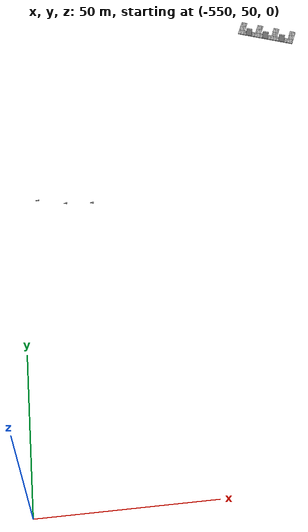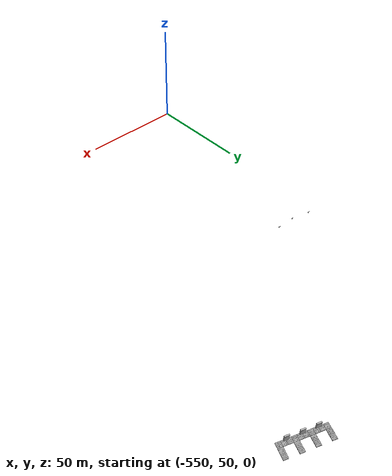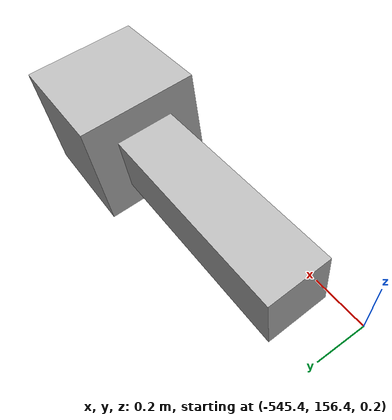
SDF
<sdf version="1.6">
 <world name="robotx_example_course">
  <spherical_coordinates>
   <surface_model>EARTH_WGS84</surface_model>
   <world_frame_orientation>ENU</world_frame_orientation>
   <latitude_deg>-33.724223</latitude_deg>
   <longitude_deg>150.679736</longitude_deg>
   <elevation>0.0</elevation>
   <heading_deg>0.0</heading_deg>
  </spherical_coordinates>
  <include><uri>model://sun</uri></include>
  <include>
   <name>post_0</name>
   <pose>-535.916809 154.362869 0.675884 -0.17182 0.030464 -0.005286</pose>
   <uri>model://post</uri>
  </include>
  <include>
   <name>post_1</name>
   <pose>-527.48999 153.854782 0.425844 -0.1365 0  0</pose>
   <uri>model://post</uri>
  </include>
  <include>
   <name>post_2</name>
   <pose>-544.832825 156.671951 0.499025 -0.162625 0 0</pose>
   <uri>model://post</uri>
  </include>
  <include>
   <name>blue_projectile</name>
   <pose>-545 60 0.03 0 0 0</pose>
   <uri>model://blue_projectile</uri>
  </include>
  <plugin filename="libusv_gazebo_wind_plugin.so" name="wind">
   <wind_obj>
    <name>wamv</name>
    <link_name>wamv/base_link</link_name>
    <coeff_vector>.5 .5 .33</coeff_vector>
   </wind_obj>
   <wind_direction>16</wind_direction>
   <wind_mean_velocity>8.0</wind_mean_velocity>
   <var_wind_gain_constants>2.0</var_wind_gain_constants>
   <var_wind_time_constants>2</var_wind_time_constants>
   <random_seed>92</random_seed>
   <update_rate>10</update_rate>
   <topic_wind_speed>/vrx/debug/wind/speed</topic_wind_speed>
   <topic_wind_direction>/vrx/debug/wind/direction</topic_wind_direction>
  </plugin>
  <scene>
   <sky><clouds><speed>12</speed></clouds></sky>
   <grid>0</grid>
   <origin_visual>0</origin_visual>
   <type>linear</type>
   <color>0.7 0.7 0.7 1</color>
   <density>0.1</density>
   <ambient>0.3 0.3 0.3 1</ambient>
  </scene>
  <include><uri>model://dock_2022</uri><pose>-466.62 229.97 0 0 0 -1.944</pose></include>
  <plugin filename="libContainPlugin.so" name="contain_placard1_big_plugin">
   <enabled>true</enabled>
   <entity>blue_projectile::link</entity>
   <namespace>vrx/dock_2022_placard1_big_hole</namespace>
   <pose frame="robotx_dock_2022::dock_2022_placard1::link_symbols">0.6 -0.27 1.33 0 0 0</pose>
   <geometry><box><size>0.5 0.5 0.5</size></box></geometry>
  </plugin>
  <plugin filename="libContainPlugin.so" name="contain_placard1_small_plugin">
   <enabled>true</enabled>
   <entity>blue_projectile::link</entity>
   <namespace>vrx/dock_2022_placard1_small_hole</namespace>
   <pose frame="robotx_dock_2022::dock_2022_placard1::link_symbols">-0.6 -0.27 1.33 0 0 0</pose>
   <geometry><box><size>0.25 0.5 0.25</size></box></geometry>
  </plugin>
  <plugin filename="libContainPlugin.so" name="contain_placard2_big_plugin">
   <enabled>true</enabled>
   <entity>blue_projectile::link</entity>
   <namespace>vrx/dock_2022_placard2_big_hole</namespace>
   <pose frame="robotx_dock_2022::dock_2022_placard2::link_symbols">0.6 -0.27 1.33 0 0 0</pose>
   <geometry><box><size>0.5 0.5 0.5</size></box></geometry>
  </plugin>
  <plugin filename="libContainPlugin.so" name="contain_placard2_small_plugin">
   <enabled>true</enabled>
   <entity>blue_projectile::link</entity>
   <namespace>vrx/dock_2022_placard2_small_hole</namespace>
   <pose frame="robotx_dock_2022::dock_2022_placard2::link_symbols">-0.6 -0.27 1.33 0 0 0</pose>
   <geometry><box><size>0.25 0.5 0.25</size></box></geometry>
  </plugin>
  <plugin filename="libContainPlugin.so" name="contain_placard3_big_plugin">
   <enabled>true</enabled>
   <entity>blue_projectile::link</entity>
   <namespace>vrx/dock_2022_placard3_big_hole</namespace>
   <pose frame="robotx_dock_2022::dock_2022_placard3::link_symbols">0.6 -0.27 1.33 0 0 0</pose>
   <geometry><box><size>0.5 0.5 0.5</size></box></geometry>
  </plugin>
  <plugin filename="libContainPlugin.so" name="contain_placard3_small_plugin">
   <enabled>true</enabled>
   <entity>blue_projectile::link</entity>
   <namespace>vrx/dock_2022_placard3_small_hole</namespace>
   <pose frame="robotx_dock_2022::dock_2022_placard3::link_symbols">-0.6 -0.27 1.33 0 0 0</pose>
   <geometry><box><size>0.25 0.5 0.25</size></box></geometry>
  </plugin>
  <plugin filename="libscan_dock_scoring_plugin.so" name="scan_dock__deliver_scoring_plugin">
   <vehicle>wamv</vehicle>
   <task_name>scan_dock_deliver</task_name>
   <initial_state_duration>3</initial_state_duration>
   <ready_state_duration>3</ready_state_duration>
   <running_state_duration>300</running_state_duration>
   <release_joints>
    <joint><name>wamv_external_pivot_joint</name></joint>
    <joint><name>wamv_external_riser</name></joint>
   </release_joints>
   <robot_namespace>vrx</robot_namespace>
   <color_sequence_service>scan_dock_deliver/color_sequence</color_sequence_service>
   <color_1>red</color_1>
   <color_2>yellow</color_2>
   <color_3>green</color_3>
   <dock_bonus_points>15</dock_bonus_points>
   <correct_dock_bonus_points>5</correct_dock_bonus_points>
   <bays>
    <bay>
     <name>bay1</name>
     <internal_activation_topic>/vrx/dock_2022/bay_1/contain</internal_activation_topic>
     <external_activation_topic>/vrx/dock_2022/bay_1_external/contain</external_activation_topic>
     <symbol_topic>/vrx/dock_2022_placard1/symbol</symbol_topic>
     <min_dock_time>10.0</min_dock_time>
     <dock_allowed>True</dock_allowed>
     <symbol>red_triangle</symbol>
    </bay>
    <bay>
     <name>bay2</name>
     <internal_activation_topic>/vrx/dock_2022/bay_2/contain</internal_activation_topic>
     <external_activation_topic>/vrx/dock_2022/bay_2_external/contain</external_activation_topic>
     <symbol_topic>/vrx/dock_2022_placard2/symbol</symbol_topic>
     <min_dock_time>10.0</min_dock_time>
     <dock_allowed>False</dock_allowed>
     <symbol>yellow_triangle</symbol>
    </bay>
    <bay>
     <name>bay3</name>
     <internal_activation_topic>/vrx/dock_2022/bay_3/contain</internal_activation_topic>
     <external_activation_topic>/vrx/dock_2022/bay_3_external/contain</external_activation_topic>
     <symbol_topic>/vrx/dock_2022_placard3/symbol</symbol_topic>
     <min_dock_time>10.0</min_dock_time>
     <dock_allowed>False</dock_allowed>
     <symbol>green_triangle</symbol>
    </bay>
   </bays>
   <targets>
    <target><topic>vrx/dock_2022_placard1_big_hole/contain</topic><bonus_points>5</bonus_points></target>
    <target><topic>vrx/dock_2022_placard1_small_hole/contain</topic><bonus_points>10</bonus_points></target>
    <target><topic>vrx/dock_2022_placard2_big_hole/contain</topic><bonus_points>5</bonus_points></target>
    <target><topic>vrx/dock_2022_placard2_small_hole/contain</topic><bonus_points>10</bonus_points></target>
    <target><topic>vrx/dock_2022_placard3_big_hole/contain</topic><bonus_points>5</bonus_points></target>
    <target><topic>vrx/dock_2022_placard3_small_hole/contain</topic><bonus_points>10</bonus_points></target>
   </targets>
  </plugin>
  <plugin filename="libContainPlugin.so" name="vehicle_docked_bay1">
   <entity>wamv::wamv/base_link</entity>
   <namespace>vrx/dock_2022/bay_1</namespace>
   <pose frame="robotx_dock_2022::dock_2022_placard1::placard::link">0 -4.5 -1.5 0 0 0</pose>
   <geometry><box><size>1.5 4 2</size></box></geometry>
  </plugin>
  <plugin filename="libContainPlugin.so" name="vehicle_docked_bay1_exterior">
   <entity>wamv::wamv/base_link</entity>
   <namespace>vrx/dock_2022/bay_1_external</namespace>
   <pose frame="robotx_dock_2022::dock_2022_placard1::placard::link">0 -9.5 -1.5 0 0 0</pose>
   <geometry><box><size>5.5 1.5 2</size></box></geometry>
  </plugin>
  <plugin filename="libContainPlugin.so" name="vehicle_docked_bay2">
   <entity>wamv::wamv/base_link</entity>
   <namespace>vrx/dock_2022/bay_2</namespace>
   <pose frame="robotx_dock_2022::dock_2022_placard2::placard::link">0 -4.5 -1.5 0 0 0</pose>
   <geometry><box><size>1.5 4 2</size></box></geometry>
  </plugin>
  <plugin filename="libContainPlugin.so" name="vehicle_docked_bay2_exterior">
   <entity>wamv::wamv/base_link</entity>
   <namespace>vrx/dock_2022/bay_2_external</namespace>
   <pose frame="robotx_dock_2022::dock_2022_placard2::placard::link">0 -9.5 -1.5 0 0 0</pose>
   <geometry><box><size>5.5 1.5 2</size></box></geometry>
  </plugin>
  <plugin filename="libContainPlugin.so" name="vehicle_docked_bay3">
   <entity>wamv::wamv/base_link</entity>
   <namespace>vrx/dock_2022/bay_3</namespace>
   <pose frame="robotx_dock_2022::dock_2022_placard3::placard::link">0 -4.5 -1.5 0 0 0</pose>
   <geometry><box><size>1.5 4 2</size></box></geometry>
  </plugin>
  <plugin filename="libContainPlugin.so" name="vehicle_docked_bay3_exterior">
   <entity>wamv::wamv/base_link</entity>
   <namespace>vrx/dock_2022/bay_3_external</namespace>
   <pose frame="robotx_dock_2022::dock_2022_placard3::placard::link">0 -9.5 -1.5 0 0 0</pose>
   <geometry><box><size>5.5 1.5 2</size></box></geometry>
  </plugin>
 </world>
</sdf>

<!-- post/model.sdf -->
<sdf version="1.6">
  <model name="post">
    <static>true</static>
    <pose>0 0 0 0 0 0</pose>
    <link name="base_link">
      <visual name="visual_1">
        <geometry>
          <box>
            <size>1 0.2 0.2</size>
          </box>
        </geometry>
      </visual>
      <visual name="visual_2">
        <pose>0.4 0 0 0 0 0</pose>
        <geometry>
          <box>
            <size>0.4 0.4 0.4</size>
          </box>
        </geometry>
      </visual>
      <collision name="collision">
        <pose>0 0 0.5 0 0 0</pose>
        <geometry>
          <box>
            <size>1 0.2 1</size>
          </box>
        </geometry>
      </collision>
    </link>
  </model>
</sdf>

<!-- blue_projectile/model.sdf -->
<sdf version="1.6">
  <model name="blue_projectile">
    <link name="link">
      <inertial>
        <mass>0.04</mass>
        <!-- Mark only - based on cylinder -->
        <inertia>
          <ixx>0.00002166</ixx>
          <ixy>0</ixy>
          <ixz>0</ixz>
          <iyy>00002166</iyy>
          <iyz>0</iyz>
          <izz>00002166</izz>
        </inertia>
      </inertial>
      <collision name="collision">
        <geometry>
          <sphere>
            <radius>0.0285</radius>
          </sphere>
        </geometry>
      </collision>
      <visual name="visual">
        <geometry>
	        <sphere>
            <radius>0.0285</radius>
          </sphere>
        </geometry>
        <material>
          <script>
            <uri>model://blue_projectile/materials/scripts/blue_projectile.material</uri>
            <name>blue_projectile/Blue</name>
          </script>
        </material>
      </visual>
    </link>
    <plugin name="BuoyancyPlugin" filename="libbuoyancy_gazebo_plugin.so">
      <wave_model>ocean_waves</wave_model>
      <fluid_density>1000</fluid_density>
      <fluid_level>0.0</fluid_level>
      <linear_drag>25.0</linear_drag>
      <angular_drag>2.0</angular_drag>
      <buoyancy name="buoyancy_sphere">
        <link_name>link</link_name>
        <pose>0 0 -0.02 0 0 0</pose>
        <geometry>
          <sphere>
            <radius>0.0285</radius>
          </sphere>
        </geometry>
      </buoyancy>
    </plugin>
  </model>
</sdf>

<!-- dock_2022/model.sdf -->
<sdf version="1.6">

  <model name="robotx_dock_2022">
    <static>true</static>

    <!-- The 2022 dock base -->
    <include>
      <uri>model://dock_2022_base</uri>
    </include>

    <!-- Placard #1 -->
    <model name="dock_2022_placard1">
      <pose>4.5 3 1.5 0 0 1.5707963267948966</pose>
      <include>
        <static>true</static>
        <pose> 0 -0.2 0.25 0 0 3.14159</pose>
        <uri>model://placard_2022</uri>
      </include>
      <link name="link_symbols">
        <static>true</static>
        <pose> 0 0.07 0 0 0 0 </pose>
        <visual name="visual_circle">
          <pose>0 0 0 1.571 0 0</pose>
          <geometry>
            <cylinder>
              <radius>0.5</radius>
              <length>0.001</length>
            </cylinder>
          </geometry>
          <transparency>1</transparency>
          <plugin name="placard1_plugin" filename="libplacard_plugin.so">
            <visuals>
              <visual>robotx_dock_2022::dock_2022_placard1::link_symbols::visual_circle</visual>
              <visual>robotx_dock_2022::dock_2022_placard1::link_symbols::visual_h_cross</visual>
              <visual>robotx_dock_2022::dock_2022_placard1::link_symbols::visual_v_cross</visual>
	            <visual>robotx_dock_2022::dock_2022_placard1::link_symbols::visual_triangle</visual>
            </visuals>
            <shuffle>true</shuffle>
            <robot_namespace>vrx/dock_2022_placard1</robot_namespace>
            <ros_shuffle_topic>shuffle</ros_shuffle_topic>
          </plugin>
        </visual>
        <visual name="visual_h_cross">
          <pose>0 0 0 1.571 0 0</pose>
          <geometry>
            <box>
              <size>0.99 0.33 0.001</size>
            </box>
          </geometry>
          <transparency>1</transparency>
        </visual>
        <visual name="visual_v_cross">
          <pose>0 0 0 1.571 0 0</pose>
          <geometry>
            <box>
              <size>0.33 0.99 0.001</size>
            </box>
          </geometry>
          <transparency>1</transparency>
	      </visual>
        <visual name="visual_triangle">
          <pose> -0.5 0 -0.5 1.571 0 0</pose>
          <geometry>
            <mesh><uri>model://symbol_triangle/mesh/triangle.dae</uri></mesh>
          </geometry>
          <transparency>1</transparency>
	      </visual>
      </link>

      <joint name="placard_to_visual" type="fixed">
        <pose> 0 0 0 0 0 0 </pose>
        <parent>placard::link</parent>
        <child>link_symbols</child>
      </joint>

    </model>

    <!-- Placard #2 -->
    <model name="dock_2022_placard2">
      <pose>4.5 9 1.5 0 0 1.5707963267948966</pose>
      <include>
        <static>true</static>
        <pose> 0 -0.2 0.25 0 0 3.14159</pose>
        <uri>model://placard_2022</uri>
      </include>
      <link name="link_symbols">
        <static>true</static>
        <pose> 0 0.07 0 0 0 0 </pose>
        <visual name="visual_circle">
          <pose>0 0 0 1.571 0 0</pose>
          <geometry>
            <cylinder>
              <radius>0.5</radius>
              <length>0.001</length>
            </cylinder>
          </geometry>
          <transparency>1</transparency>
          <plugin name="placard2_plugin" filename="libplacard_plugin.so">
            <visuals>
              <visual>robotx_dock_2022::dock_2022_placard2::link_symbols::visual_circle</visual>
              <visual>robotx_dock_2022::dock_2022_placard2::link_symbols::visual_h_cross</visual>
              <visual>robotx_dock_2022::dock_2022_placard2::link_symbols::visual_v_cross</visual>
	            <visual>robotx_dock_2022::dock_2022_placard2::link_symbols::visual_triangle</visual>
            </visuals>
            <shuffle>true</shuffle>
            <robot_namespace>vrx/dock_2022_placard2</robot_namespace>
            <ros_shuffle_topic>shuffle</ros_shuffle_topic>
          </plugin>
        </visual>
        <visual name="visual_h_cross">
          <pose>0 0 0 1.571 0 0</pose>
          <geometry>
            <box>
              <size>0.99 0.33 0.001</size>
            </box>
          </geometry>
          <transparency>1</transparency>
        </visual>
        <visual name="visual_v_cross">
          <pose>0 0 0 1.571 0 0</pose>
          <geometry>
            <box>
              <size>0.33 0.99 0.001</size>
            </box>
          </geometry>
          <transparency>1</transparency>
	      </visual>
        <visual name="visual_triangle">
          <pose> -0.5 0 -0.5 1.571 0 0</pose>
          <geometry>
            <mesh><uri>model://symbol_triangle/mesh/triangle.dae</uri></mesh>
          </geometry>
          <transparency>1</transparency>
	      </visual>
      </link>

      <joint name="placard_to_visual" type="fixed">
        <pose> 0 0 0 0 0 0 </pose>
        <parent>placard::link</parent>
        <child>link_symbols</child>
      </joint>

    </model>

    <!-- Placard #3 -->
    <model name="dock_2022_placard3">
      <pose>4.5 15 1.5 0 0 1.5707963267948966</pose>
      <include>
        <static>true</static>
        <pose> 0 -0.2 0.25 0 0 3.14159</pose>
        <uri>model://placard_2022</uri>
      </include>
      <link name="link_symbols">
        <static>true</static>
        <pose> 0 0.07 0 0 0 0 </pose>
        <visual name="visual_circle">
          <pose>0 0 0 1.571 0 0</pose>
          <geometry>
            <cylinder>
              <radius>0.5</radius>
              <length>0.001</length>
            </cylinder>
          </geometry>
          <transparency>1</transparency>
          <plugin name="placard3_plugin" filename="libplacard_plugin.so">
            <visuals>
              <visual>robotx_dock_2022::dock_2022_placard3::link_symbols::visual_circle</visual>
              <visual>robotx_dock_2022::dock_2022_placard3::link_symbols::visual_h_cross</visual>
              <visual>robotx_dock_2022::dock_2022_placard3::link_symbols::visual_v_cross</visual>
	            <visual>robotx_dock_2022::dock_2022_placard3::link_symbols::visual_triangle</visual>
            </visuals>
            <shuffle>true</shuffle>
            <robot_namespace>vrx/dock_2022_placard3</robot_namespace>
            <ros_shuffle_topic>shuffle</ros_shuffle_topic>
          </plugin>
        </visual>
        <visual name="visual_h_cross">
          <pose>0 0 0 1.571 0 0</pose>
          <geometry>
            <box>
              <size>0.99 0.33 0.001</size>
            </box>
          </geometry>
          <transparency>1</transparency>
        </visual>
        <visual name="visual_v_cross">
          <pose>0 0 0 1.571 0 0</pose>
          <geometry>
            <box>
              <size>0.33 0.99 0.001</size>
            </box>
          </geometry>
          <transparency>1</transparency>
	      </visual>
        <visual name="visual_triangle">
          <pose> -0.5 0 -0.5 1.571 0 0</pose>
          <geometry>
            <mesh><uri>model://symbol_triangle/mesh/triangle.dae</uri></mesh>
          </geometry>
          <transparency>1</transparency>
	      </visual>
      </link>

      <joint name="placard_to_visual" type="fixed">
        <pose> 0 0 0 0 0 0 </pose>
        <parent>placard::link</parent>
        <child>link_symbols</child>
      </joint>

    </model>

  </model>
</sdf>

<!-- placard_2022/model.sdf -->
<sdf version="1.6">
  <model name="placard">
    <pose>0 0 1 0 0 0</pose>
    <!-- The white placard -->
    <link name="link">
      <collision name="collision_1">
        <pose>-0.9234 0.0 1.164 0.0 0.0 0.0</pose>
        <geometry>
          <box>
            <size>0.153199 0.500 0.672</size>
          </box>
        </geometry>
      </collision>
      <collision name="collision_2">
        <pose>-0.596803 0.0 1.41357 -3.14159 -1.5708 0.0</pose>
        <geometry>
          <box>
            <size>0.17285 0.5 0.5</size>
          </box>
        </geometry>
      </collision>
      <collision name="collision_3">
        <pose>0.326598 0.0 1.35111 0.0 0.0 0.0</pose>
        <geometry>
          <box>
            <size>1.3468 0.500 0.29777</size>
          </box>
        </geometry>
      </collision>
      <collision name="collision_4">
        <pose>0.070527 0.0 1.07723 0.0 0.0 0.0</pose>
        <geometry>
          <box>
            <size>0.834664 0.500 0.25</size>
          </box>
        </geometry>
      </collision>
      <collision name="collision_6">
        <pose>0.326598 0.0 0.890117 0.0 0.0 0.0</pose>
        <geometry>
          <box>
            <size>1.3468 0.500 0.124233</size>
          </box>
        </geometry>
      </collision>
      <collision name="collision_5">
        <pose>0.868936 0.0 1.07723 1.5708 0.0 1.5708</pose>
        <geometry>
          <box>
            <size>0.500 0.25 0.262128</size>
          </box>
        </geometry>
      </collision>
      <collision name="collision_7">
        <pose>0.0 0.0 -0.336 0.0 0.0 0.0</pose>
        <geometry>
          <box>
            <size>2.000 0.500 2.328</size>
          </box>
        </geometry>
      </collision>
      <visual name="visual">
        <geometry>
          <mesh>
            <uri>file://placard_2022/meshes/placard_2022.dae</uri>
          </mesh>
        </geometry>
      </visual>
    </link>
  </model>
</sdf>

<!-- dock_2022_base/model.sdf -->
<sdf version="1.6">

  <!-- Important: This file is generated. DO NOT EDIT! -->

  <model name="robotx_dock_2022_base">
    <selfCollide>false</selfCollide>

    <!--
      This is how this dock should look like:

          X  X  X  X          X  X  X  X          XXXXXXXXXX
    -->

      <static>true</static>

    <!-- Row 0 -->
    <include>
      <name>dock_block_0_0</name>
      <pose>0 0 0.25 0 0 0</pose>
        <uri>model://dock_block_4x4</uri>
    </include>
    <include>
      <name>dock_block_0_3</name>
      <pose>0 6 0.25 0 0 0</pose>
        <uri>model://dock_block_4x4</uri>
    </include>
    <include>
      <name>dock_block_0_6</name>
      <pose>0 12 0.25 0 0 0</pose>
        <uri>model://dock_block_4x4</uri>
    </include>
    <include>
      <name>dock_block_0_9</name>
      <pose>0 18 0.25 0 0 0</pose>
        <uri>model://dock_block_4x4</uri>
    </include>

    <!-- Row 1 -->
    <include>
      <name>dock_block_1_0</name>
      <pose>2 0 0.25 0 0 0</pose>
        <uri>model://dock_block_4x4</uri>
    </include>
    <include>
      <name>dock_block_1_3</name>
      <pose>2 6 0.25 0 0 0</pose>
        <uri>model://dock_block_4x4</uri>
    </include>
    <include>
      <name>dock_block_1_6</name>
      <pose>2 12 0.25 0 0 0</pose>
        <uri>model://dock_block_4x4</uri>
    </include>
    <include>
      <name>dock_block_1_9</name>
      <pose>2 18 0.25 0 0 0</pose>
        <uri>model://dock_block_4x4</uri>
    </include>

    <!-- Row 2 -->
    <include>
      <name>dock_block_2_0</name>
      <pose>4 0 0.25 0 0 0</pose>
        <uri>model://dock_block_4x4</uri>
    </include>
    <include>
      <name>dock_block_2_1</name>
      <pose>4 2 0.25 0 0 0</pose>
        <uri>model://dock_block_4x4</uri>
    </include>
    <include>
      <name>dock_block_2_2</name>
      <pose>4 4 0.25 0 0 0</pose>
        <uri>model://dock_block_4x4</uri>
    </include>
    <include>
      <name>dock_block_2_3</name>
      <pose>4 6 0.25 0 0 0</pose>
        <uri>model://dock_block_4x4</uri>
    </include>
    <include>
      <name>dock_block_2_4</name>
      <pose>4 8 0.25 0 0 0</pose>
        <uri>model://dock_block_4x4</uri>
    </include>
    <include>
      <name>dock_block_2_5</name>
      <pose>4 10 0.25 0 0 0</pose>
        <uri>model://dock_block_4x4</uri>
    </include>
    <include>
      <name>dock_block_2_6</name>
      <pose>4 12 0.25 0 0 0</pose>
        <uri>model://dock_block_4x4</uri>
    </include>
    <include>
      <name>dock_block_2_7</name>
      <pose>4 14 0.25 0 0 0</pose>
        <uri>model://dock_block_4x4</uri>
    </include>
    <include>
      <name>dock_block_2_8</name>
      <pose>4 16 0.25 0 0 0</pose>
        <uri>model://dock_block_4x4</uri>
    </include>
    <include>
      <name>dock_block_2_9</name>
      <pose>4 18 0.25 0 0 0</pose>
        <uri>model://dock_block_4x4</uri>
    </include>

  </model>
</sdf>

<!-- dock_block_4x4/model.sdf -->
<sdf version="1.5">
  <model name="dock_block_4x4">
    <static>false</static>
    <link name="link">
      <velocity_decay>
        <linear>0.001</linear>
        <angular>0.001</angular>
      </velocity_decay>
       <inertial>
        <pose>0 0 0 0 0 0</pose>
        <mass>160</mass>
        <inertia>
          <ixx>55.467</ixx>
          <ixy>0</ixy>
          <ixz>0</ixz>
          <iyy>55.467</iyy>
          <iyz>0</iyz>
          <izz>106.67</izz>
        </inertia>
      </inertial>
      <collision name="collision">
        <pose>0 0 0 0 0 0</pose>
        <geometry>
          <box>
            <size>2 2 0.4</size>
          </box>
        </geometry>
      </collision>
      <visual name="visual">
        <pose>-0.25 0.25 0.2 0 0 0 </pose>
        <geometry>
          <mesh>
            <uri>file://dock_block_4x4/mesh/dock_block_4x4.dae</uri>
          </mesh>
        </geometry>
      </visual>
    </link>
    <plugin name="BuoyancyPlugin" filename="libbuoyancy_gazebo_plugin.so">
      <wave_model>ocean_waves</wave_model>
      <fluid_density>1000</fluid_density>
      <fluid_level>0</fluid_level>
      <linear_drag>1000.0</linear_drag>
      <angular_drag>200.0</angular_drag>
      <buoyancy name="buoyancy_base">
        <link_name>link</link_name>
      	<pose>0 0 0 0 0 0</pose>
        <geometry>
	  <sphere>
            <radius>0.72557</radius>
          </sphere>
	</geometry>
      </buoyancy>
    </plugin>
  </model>
</sdf>
